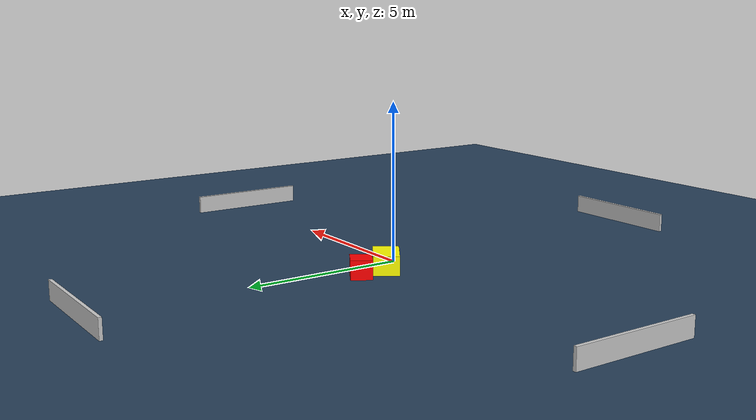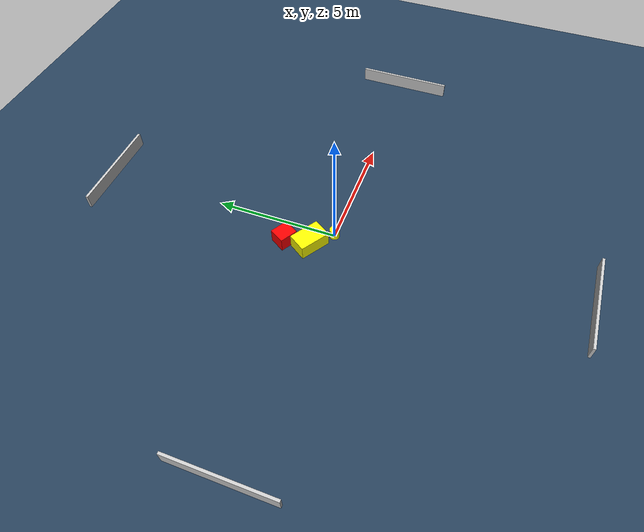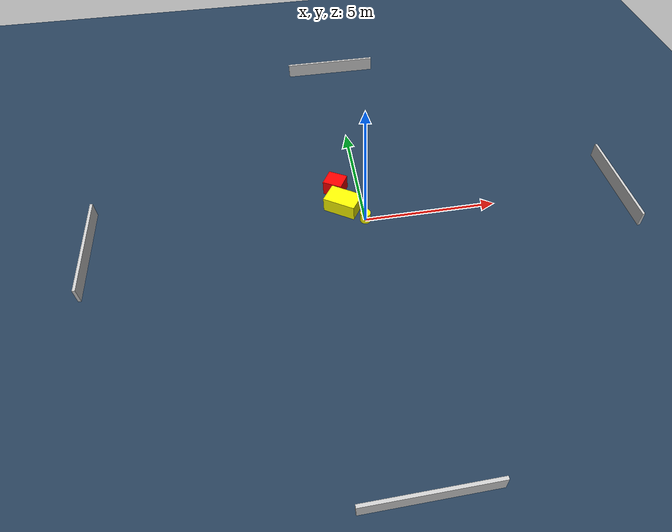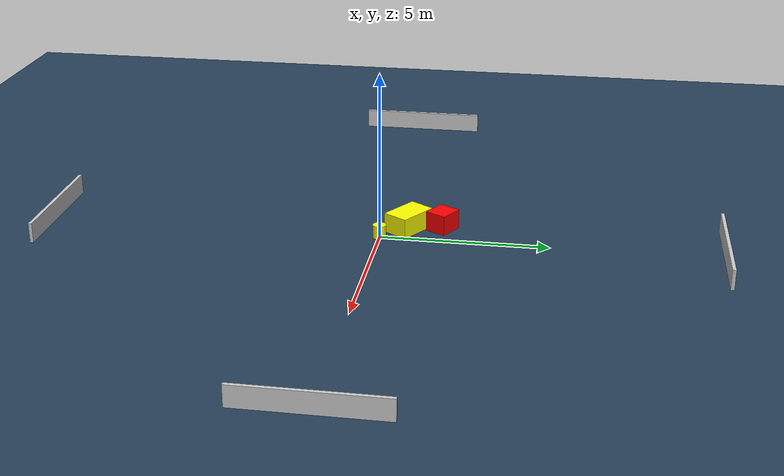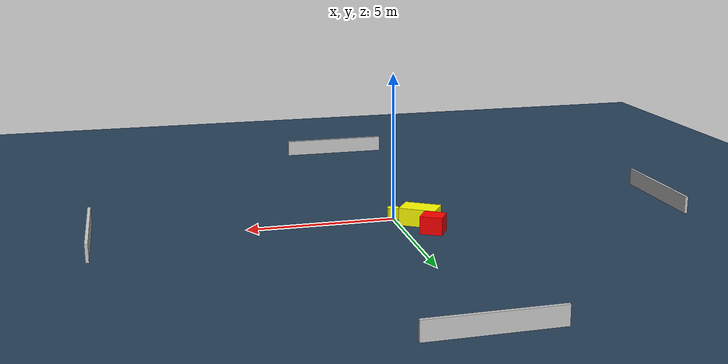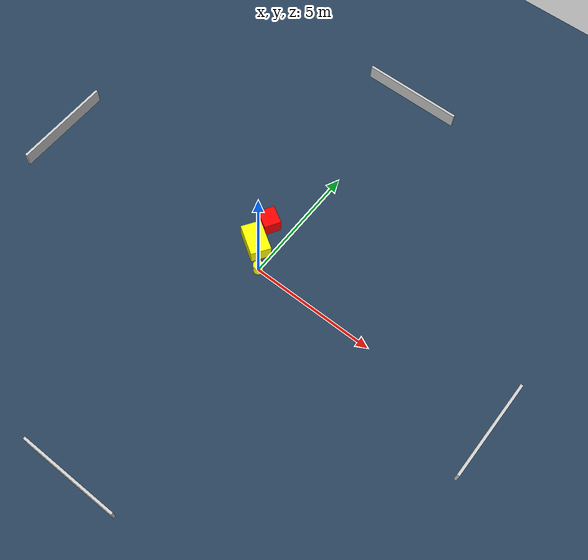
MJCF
<?xml version="1.0" ?>
<mujoco model="generated_environment">
  <option timestep="0.01" integrator="RK4" cone="elliptic"/>
  <default>
    <geom density="1"/>
  </default>
  <asset>
    <texture builtin="gradient" height="3072" name="skybox" rgb1="0.3 0.5 0.7" rgb2="0 0 0" type="skybox" width="512"/>
    <texture builtin="checker" height="300" name="groundplane" rgb1="0.2 0.3 0.4" rgb2="0.1 0.2 0.3" type="2d" width="300"/>
    <material name="groundplane" reflectance="0.2" texrepeat="5 5" texture="groundplane"/>
  </asset>
  <worldbody>
    <light dir="0 0 -1" directional="true" pos="0 0 1.5"/>
    <geom condim="3" friction="0.5 0.005 0.001" material="groundplane" name="floor" pos="0 0 0" size="0 0 0.05" type="plane"/>
    <body name="walls">
      <geom name="wall_1" condim="4" pos="-10.0 0.0 0.3" rgba="0.800000011920929 0.800000011920929 0.800000011920929 1.0" size="0.05 2.0 0.3" type="box"/>
      <geom name="wall_2" condim="4" pos="10.0 0.0 0.3" rgba="0.800000011920929 0.800000011920929 0.800000011920929 1.0" size="0.05 2.0 0.3" type="box"/>
      <geom name="wall_3" condim="4" pos="0.0 -10.0 0.3" rgba="0.800000011920929 0.800000011920929 0.800000011920929 1.0" size="2.0 0.05 0.3" type="box"/>
      <geom name="wall_4" condim="4" pos="0.0 10.0 0.3" rgba="0.800000011920929 0.800000011920929 0.800000011920929 1.0" size="2.0 0.05 0.3" type="box"/>
    </body>
    <body name="robot">
      <joint name="joint_x" type="slide" pos="0 0 0" axis="1 0 0"/>
      <joint name="joint_y" type="slide" pos="0 0 0" axis="0 1 0"/>
      <geom name="robot" type="cylinder" pos="0.0 0.0 0.2" size="0.2 0.2 0.0" mass="5.0" friction="1.0 0.005 0.0001" condim="4" rgba="1.0 1.0 0.0 1.0"/>
    </body>
    <body name="obstacle_1_movable">
      <geom name="obstacle_1_movable" condim="4" pos="-0.731454892293972 0.7674043983995 0.3" euler="0 0 236.8850488185897" friction="0.0 0.005 0.001" rgba="1.0 1.0 0.0 1.0" size="0.3994748720143185 0.6266347275948174 0.3" type="box" mass="0.1"/>
      <joint type="free"/>
    </body>
    <body name="obstacle_2_static">
      <geom name="obstacle_2_static" condim="4" pos="-0.8883893323243859 1.7691338971201247 0.3" euler="0 0 59.812644093513036" friction="0.0 0.005 0.001" rgba="1.0 0.0 0.0 1.0" size="0.3309449393740692 0.37386762200471535 0.3" type="box"/>
    </body>
  </worldbody>
  <actuator>
    <motor name="actuator_x" joint="joint_x" gear="1" ctrlrange="-1 1"/>
    <motor name="actuator_y" joint="joint_y" gear="1" ctrlrange="-1 1"/>
  </actuator>
</mujoco>
